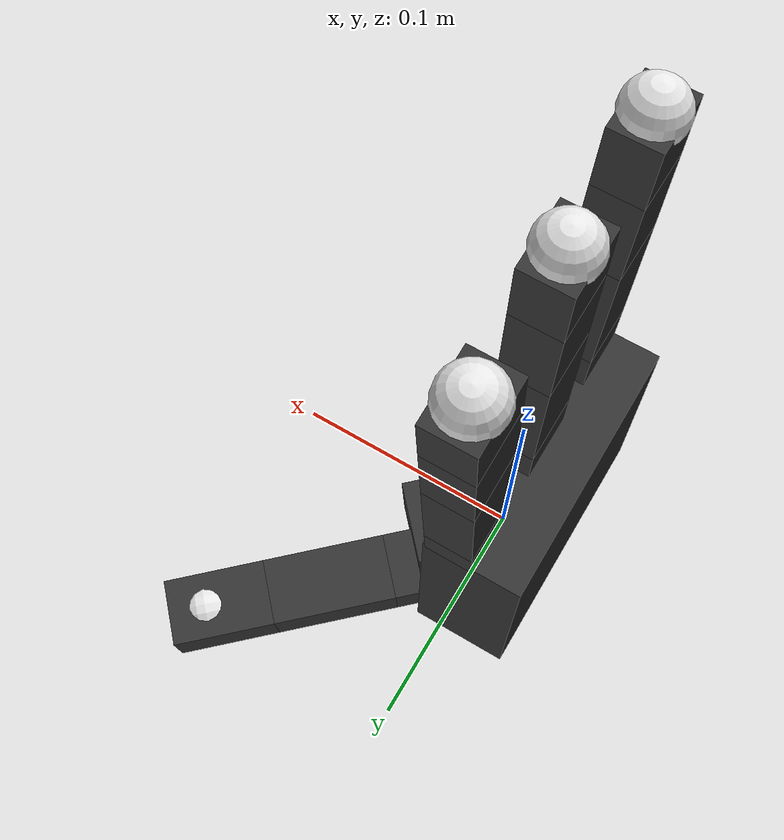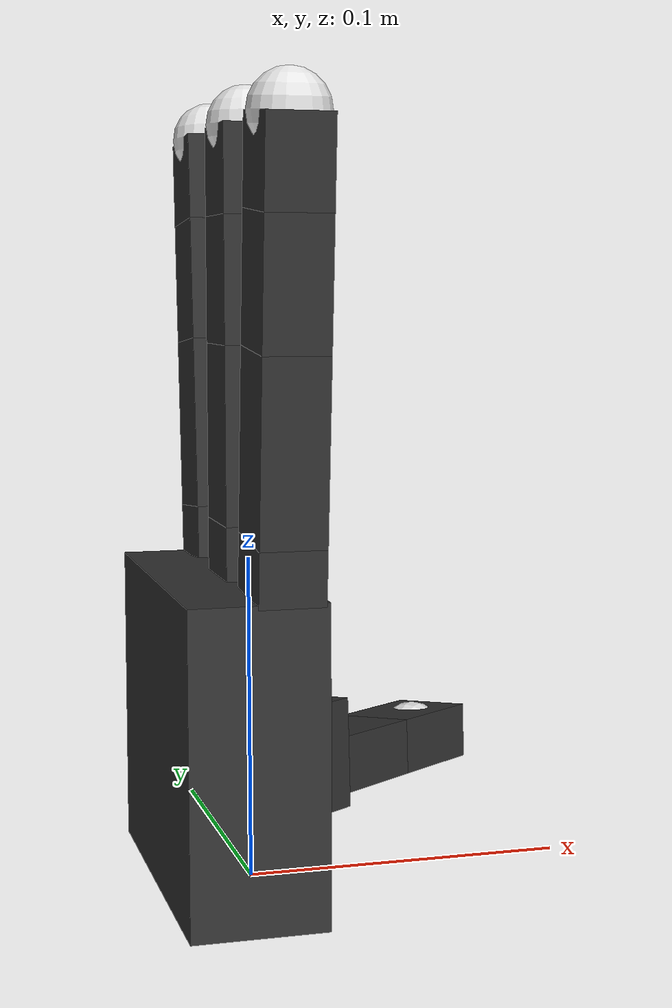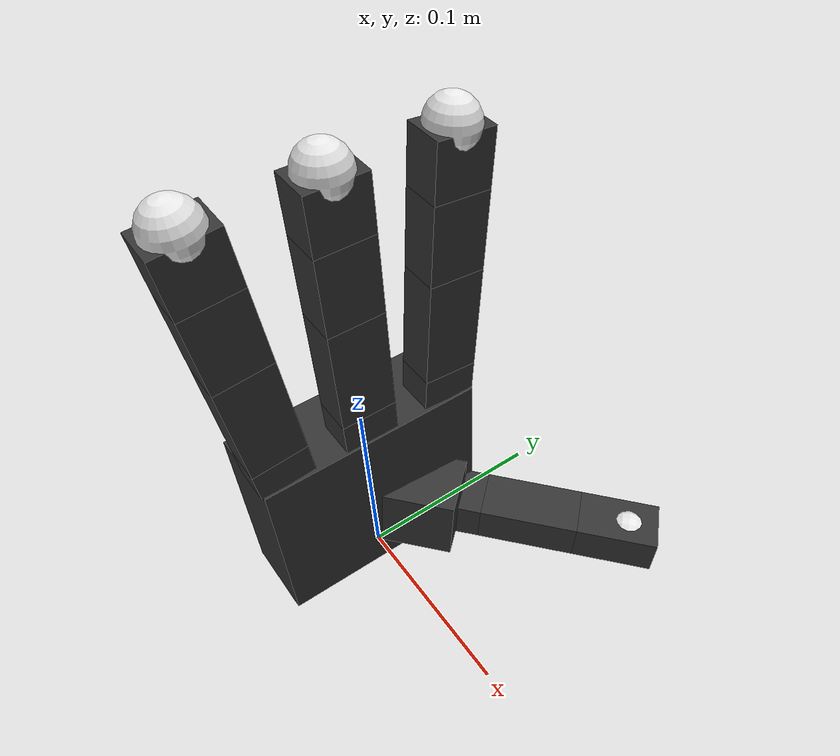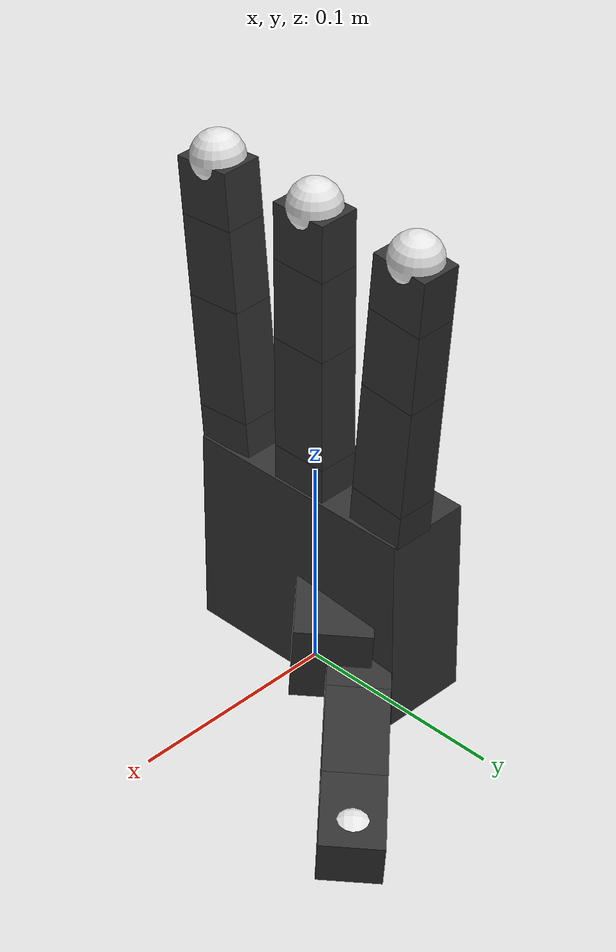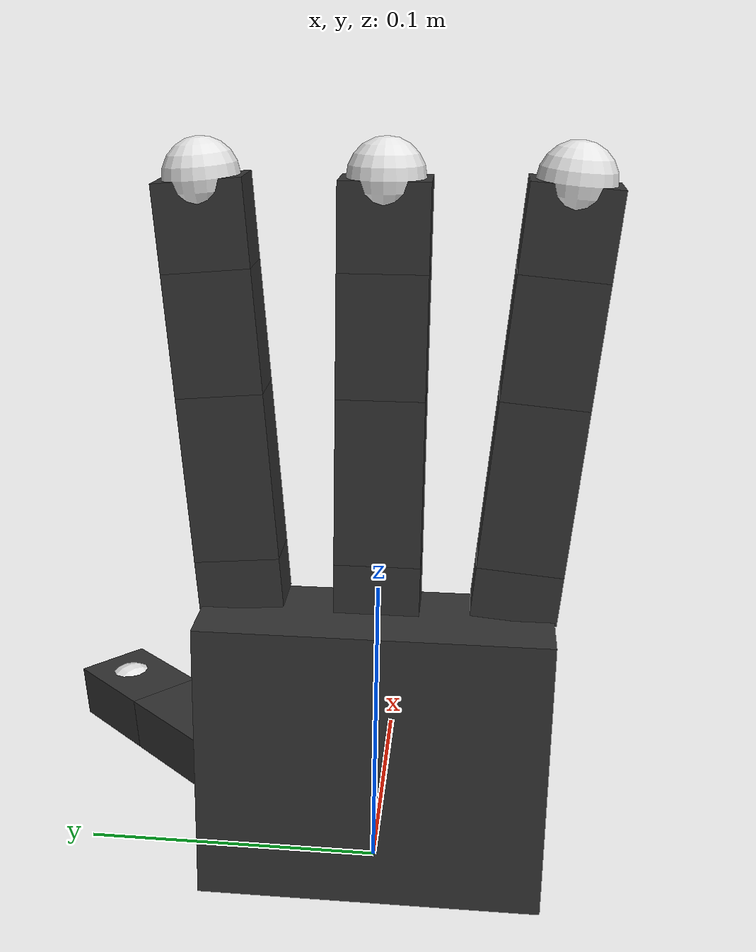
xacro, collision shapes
<?xml version="1.0"?>
<robot xmlns:xacro="http://www.ros.org/wiki/xacro" name="allegro_hand">
    <xacro:arg name="ros2_control_hardware_type" default="physical_device" />
    <xacro:arg name="hand" default="right" />
    <xacro:arg name="hand_id" default="1" />

    <xacro:arg name="initial_positions_file" default="$(find allegro_hand_v4_description)/config/initial_positions.yaml" />
    <xacro:arg name="pd_gains_file" default="$(find allegro_hand_v4_description)/config/pd_gains.yaml" />
    <xacro:arg name="ah_prefix" default="ah_" />

    <xacro:property name="hand_arg" value="$(arg hand)"/>

    <xacro:if value="${hand_arg == 'right'}">
        <xacro:include filename="$(find allegro_hand_v4_description)/urdf/allegro_hand_description_right.xacro" />
        <xacro:allegro_hand_right prefix="$(arg ah_prefix)"/>
    </xacro:if>

    <xacro:if value="${hand_arg == 'left'}">
        <xacro:include filename="$(find allegro_hand_v4_description)/urdf/allegro_hand_description_left.xacro" />
        <xacro:allegro_hand_left prefix="$(arg ah_prefix)"/>
    </xacro:if>

    <xacro:include filename="$(find allegro_hand_bringup)/config/v4/single_hand/allegro_hand.ros2_control.xacro" />
    <xacro:allegro_hand_ros2_control name="AllegroHandV4" initial_positions_file="$(arg initial_positions_file)" pd_gains_file="$(arg pd_gains_file)" io_interface_descriptor="can:can0" hand_id="$(arg hand_id)" prefix="$(arg ah_prefix)" ros2_control_hardware_type="$(arg ros2_control_hardware_type)"/>

    <xacro:if value="${'$(arg ros2_control_hardware_type)' == 'gazebo'}">
        <!-- Fix base_link to the world for Gazebo -->
        <link name="world"/>
        <joint name="world_fixed" type="fixed">
            <parent link="world"/>
            <child link="$(arg ah_prefix)base_link"/> <origin xyz="0 0 0" rpy="0 0 0"/>
        </joint>

        <!-- Add Gazebo ROS 2 control plugin -->
        <gazebo>
            <plugin
                filename="gz_ros2_control-system"
                name="gz_ros2_control::GazeboSimROS2ControlPlugin">
                <parameters>$(find allegro_hand_bringup)/config/v4/single_hand/ros2_controllers.yaml</parameters>
            </plugin>
        </gazebo>
    </xacro:if>

</robot>

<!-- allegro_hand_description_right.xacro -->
<robot xmlns:xacro="http://www.ros.org/wiki/xacro" name="allegro_hand_right">
  <xacro:macro name="allegro_hand_right" params="prefix:=''">
    <!-- Root base_link (virtual link for reference frame) -->
    <link name="${prefix}base_link" />
    <!-- Fixed joint connecting base_link to palm_link -->
    <joint name="${prefix}base_to_palm_joint" type="fixed">
      <parent link="${prefix}base_link" />
      <child link="${prefix}palm_link" />
      <origin xyz="0 0 0.095" rpy="0 0 0" />
    </joint>

    <link name="${prefix}palm_link">
      <visual>
        <geometry>
          <mesh filename="package://allegro_hand_v4_description/meshes/palm_link.STL" />
        </geometry>
        <origin rpy="0 0 0" xyz="0 0 0" />
        <material name="${prefix}black">
          <color rgba="0.2 0.2 0.2 1" />
        </material>
      </visual>
      <collision>
        <origin rpy="0 0 0" xyz="-0.009300 0 -0.0475" />
        <geometry>
          <box size="0.0408 0.1130 0.095" />
        </geometry>
      </collision>
      <inertial>
        <origin rpy="0 0 0" xyz="0 0 0.0475" />
        <mass value="0.4154" />
        <inertia ixx="1e-4" ixy="0.0" ixz="0.0" iyy="1e-4" iyz="0.0" izz="1e-4" />
      </inertial>
    </link>

    <link name="${prefix}link_00">
      <visual>
        <geometry>
          <mesh filename="package://allegro_hand_v4_description/meshes/link_t.0.right.STL" />
        </geometry>
        <material name="${prefix}black">
          <color rgba=".2 .2 .2 1" />
        </material>
        <origin rpy="0.01745329251 0 0" xyz="0 0 0" />
      </visual>
      <collision>
        <geometry>
          <box size="0.0358 0.034 0.0455" />
        </geometry>
        <origin rpy="0 0 0" xyz="-0.0179 0.017 0.02275" />
      </collision>
      <inertial>
        <mass value="0.0176" />
        <origin rpy="0 0 0" xyz="0 0 0" />
        <inertia ixx="1e-4" ixy="0.0" ixz="0.0" iyy="1e-4" iyz="0.0" izz="1e-4" />
      </inertial>
    </link>
    <joint name="${prefix}joint00" type="revolute">
      <axis xyz="-1 0 0" />
      <limit effort="15" lower="0.263" upper="1.396" velocity="7" />
      <parent link="${prefix}palm_link" />
      <child link="${prefix}link_00" />
      <origin rpy="0 -1.6580627884499999 -1.5707963259" xyz="-0.0182 0.019333 -0.045987" />
      <dynamics damping="0.1" friction="0.01" />
    </joint>

    <link name="${prefix}link_01">
      <visual>
        <geometry>
          <mesh filename="package://allegro_hand_v4_description/meshes/link_t.1.STL" />
        </geometry>
        <material name="${prefix}black">
          <color rgba=".2 .2 .2 1" />
        </material>
      </visual>
      <collision>
        <geometry>
          <box size="0.0196 0.0275 0.0177" />
        </geometry>
        <origin rpy="0 0 0" xyz="0 0 0.00885" />
      </collision>
      <inertial>
        <mass value="0.0119" />
        <origin rpy="0 0 0" xyz="0 0 0" />
        <inertia ixx="1e-4" ixy="0.0" ixz="0.0" iyy="1e-4" iyz="0.0" izz="1e-4" />
      </inertial>
    </link>
    <joint name="${prefix}joint01" type="revolute">
      <axis xyz="0 0 1" />
      <limit effort="15" lower="-0.10499999999999998" upper="1.1629999999999998" velocity="7" />
      <parent link="${prefix}link_00" />
      <child link="${prefix}link_01" />
      <origin xyz="-0.027 0.005 0.0399" />
      <dynamics damping="0.1" friction="0.01" />
    </joint>

    <link name="${prefix}link_02">
      <visual>
        <geometry>
          <mesh filename="package://allegro_hand_v4_description/meshes/link_t.2.STL" />
        </geometry>
        <material name="${prefix}black" />
      </visual>
      <collision>
        <geometry>
          <box size="0.0196 0.0275 0.0514" />
        </geometry>
        <origin rpy="0 0 0" xyz="0 0 0.0257" />
      </collision>
      <inertial>
        <mass value="0.038" />
        <origin rpy="0 0 0" xyz="0 0 0" />
        <inertia ixx="1e-4" ixy="0.0" ixz="0.0" iyy="1e-4" iyz="0.0" izz="1e-4" />
      </inertial>
    </link>
    <joint name="${prefix}joint02" type="revolute">
      <axis xyz="0 1 0" />
      <limit effort="15" lower="-0.18899999999999997" upper="1.644" velocity="7" />
      <parent link="${prefix}link_01" />
      <child link="${prefix}link_02" />
      <origin xyz="0 0 0.0177" />
      <dynamics damping="0.1" friction="0.01" />
    </joint>

    <link name="${prefix}link_03">
      <visual>
        <geometry>
          <mesh filename="package://allegro_hand_v4_description/meshes/link_t.3.STL" />
        </geometry>
        <material name="${prefix}black"/>
      </visual>
      <collision>
        <geometry>
          <box size="0.0196 0.0275 0.042300000000000004" />
        </geometry>
        <origin rpy="0 0 0" xyz="0 0 0.021150000000000002" />
      </collision>
      <inertial>
        <mass value="0.0388" />
        <origin rpy="0 0 0" xyz="0 0 0" />
        <inertia ixx="1e-4" ixy="0.0" ixz="0.0" iyy="1e-4" iyz="0.0" izz="1e-4" />
      </inertial>
    </link>
    <joint name="${prefix}joint03" type="revolute">
      <axis xyz="0 1 0" />
      <limit effort="15" lower="-0.162" upper="1.7189999999999999" velocity="7" />
      <parent link="${prefix}link_02" />
      <child link="${prefix}link_03" />
      <origin xyz="0 0 0.0514" />
      <dynamics damping="0.1" friction="0.01" />
    </joint>

    <link name="${prefix}link_04">
      <visual>
        <geometry>
          <mesh filename="package://allegro_hand_v4_description/meshes/link_t.4.STL" />
        </geometry>
        <material name="${prefix}white">
          <color rgba=".9 .9 .9 1" />
        </material>
      </visual>
      <collision>
        <geometry>
          <sphere radius="0.012" />
        </geometry>
        <origin rpy="0 0 0" xyz="0 0 0" />
      </collision>
      <inertial>
        <mass value="0.0168" />
        <origin rpy="0 0 0" xyz="0 0 0" />
        <inertia ixx="9.68e-07" ixy="0" ixz="0" iyy="9.68e-07" iyz="0" izz="9.68e-07" />
      </inertial>
    </link>
    <joint name="${prefix}joint.04" type="fixed">
      <parent link="${prefix}link_03" />
      <child link="${prefix}link_04" />
      <origin rpy="0 0 0" xyz="0 0 0.026699999999999998" />
    </joint>

    <link name="${prefix}link_10">
      <visual>
        <geometry>
          <mesh filename="package://allegro_hand_v4_description/meshes/link_f.0.STL" />
        </geometry>
        <material name="${prefix}black" />
      </visual>
      <collision>
        <geometry>
          <box size="0.0196 0.0275 0.0164" />
        </geometry>
        <origin rpy="0 0 0" xyz="0 0 0.0082" />
      </collision>
      <inertial>
        <mass value="0.0119" />
        <origin rpy="0 0 0" xyz="0 0 0" />
        <inertia ixx="1e-4" ixy="0.0" ixz="0.0" iyy="1e-4" iyz="0.0" izz="1e-4" />
      </inertial>
    </link>
    <joint name="${prefix}joint10" type="revolute">
      <axis xyz="0 0 1" />
      <limit effort="15" lower="-0.47" upper="0.47" velocity="7" />
      <parent link="${prefix}palm_link" />
      <child link="${prefix}link_10" />
      <origin rpy="-0.08726646254999999 0 0" xyz="0 0.0435 0" />
      <dynamics damping="0.1" friction="0.01" />
    </joint>

    <link name="${prefix}link_11">
      <visual>
        <geometry>
          <mesh filename="package://allegro_hand_v4_description/meshes/link_f.1.STL" />
        </geometry>
        <material name="${prefix}black" />
      </visual>
      <collision>
        <geometry>
          <box size="0.0196 0.0275 0.054" />
        </geometry>
        <origin rpy="0 0 0" xyz="0 0 0.027" />
      </collision>
      <inertial>
        <mass value="0.065" />
        <origin rpy="0 0 0" xyz="0 0 0" />
        <inertia ixx="1e-4" ixy="0.0" ixz="0.0" iyy="1e-4" iyz="0.0" izz="1e-4" />
      </inertial>
    </link>
    <joint name="${prefix}joint11" type="revolute">
      <limit effort="15" lower="-0.19599999999999998" upper="1.6099999999999999" velocity="7" />
      <axis xyz="0 1 0" />
      <parent link="${prefix}link_10" />
      <child link="${prefix}link_11" />
      <origin xyz="0 0 0.0164" />
      <dynamics damping="0.1" friction="0.01" />
    </joint>

    <link name="${prefix}link_12">
      <visual>
        <geometry>
          <mesh filename="package://allegro_hand_v4_description/meshes/link_f.2.STL" />
        </geometry>
        <material name="${prefix}black" />
      </visual>
      <collision>
        <geometry>
          <box size="0.0196 0.0275 0.0384" />
        </geometry>
        <origin rpy="0 0 0" xyz="0 0 0.0192" />
      </collision>
      <inertial>
        <mass value="0.0355" />
        <origin rpy="0 0 0" xyz="0 0 0" />
        <inertia ixx="1e-4" ixy="0.0" ixz="0.0" iyy="1e-4" iyz="0.0" izz="1e-4" />
      </inertial>
    </link>
    <joint name="${prefix}joint12" type="revolute">
      <axis xyz="0 1 0" />
      <limit effort="15" lower="-0.17400000000000002" upper="1.7089999999999999" velocity="7" />
      <parent link="${prefix}link_11" />
      <child link="${prefix}link_12" />
      <origin xyz="0 0 0.054" />
      <dynamics damping="0.1" friction="0.01" />
    </joint>

    <link name="${prefix}link_13">
      <visual>
        <geometry>
          <mesh filename="package://allegro_hand_v4_description/meshes/link_f.3.STL" />
        </geometry>
        <material name="${prefix}black" />
      </visual>
      <collision>
        <geometry>
          <box size="0.0196 0.0275 0.026699999999999998" />
        </geometry>
        <origin rpy="0 0 0" xyz="0 0 0.013349999999999999" />
      </collision>
      <inertial>
        <mass value="0.0096" />
        <origin rpy="0 0 0" xyz="0 0 0" />
        <inertia ixx="1e-4" ixy="0.0" ixz="0.0" iyy="1e-4" iyz="0.0" izz="1e-4" />
      </inertial>
    </link>
    <joint name="${prefix}joint13" type="revolute">
      <axis xyz="0 1 0" />
      <limit effort="15" lower="-0.227" upper="1.6179999999999999" velocity="7" />
      <parent link="${prefix}link_12" />
      <child link="${prefix}link_13" />
      <origin xyz="0 0 0.0384" />
      <dynamics damping="0.1" friction="0.01" />
    </joint>

    <link name="${prefix}link_14">
      <visual>
        <geometry>
          <mesh filename="package://allegro_hand_v4_description/meshes/link_f.4.STL" />
        </geometry>
        <material name="${prefix}white">
          <color rgba=".9 .9 .9 1" />
        </material>
      </visual>
      <collision>
        <geometry>
          <sphere radius="0.012" />
        </geometry>
        <origin rpy="0 0 0" xyz="0 0 0" />
      </collision>
      <inertial>
        <mass value="0.0168" />
        <origin rpy="0 0 0" xyz="0 0 0" />
        <inertia ixx="1e-4" ixy="0.0" ixz="0.0" iyy="1e-4" iyz="0.0" izz="1e-4" />
      </inertial>
    </link>
    <joint name="${prefix}joint.14" type="fixed">
      <parent link="${prefix}link_13" />
      <child link="${prefix}link_14" />
      <origin rpy="0 0 0" xyz="0 0 0.026699999999999998" />
    </joint>

    <link name="${prefix}link_20">
      <visual>
        <geometry>
          <mesh filename="package://allegro_hand_v4_description/meshes/link_f.0.STL" />
        </geometry>
        <material name="${prefix}black" />
      </visual>
      <collision>
        <geometry>
          <box size="0.0196 0.0275 0.0164" />
        </geometry>
        <origin rpy="0 0 0" xyz="0 0 0.0082" />
      </collision>
      <inertial>
        <mass value="0.0119" />
        <origin rpy="0 0 0" xyz="0 0 0" />
        <inertia ixx="1e-4" ixy="0.0" ixz="0.0" iyy="1e-4" iyz="0.0" izz="1e-4" />
      </inertial>
    </link>
    <joint name="${prefix}joint20" type="revolute">
      <axis xyz="0 0 1" />
      <limit effort="15" lower="-0.47" upper="0.47" velocity="7" />
      <parent link="${prefix}palm_link" />
      <child link="${prefix}link_20" />
      <origin rpy="0.0 0 0" xyz="0 0 0" />
      <dynamics damping="0.1" friction="0.01" />
    </joint>

    <link name="${prefix}link_21">
      <visual>
        <geometry>
          <mesh filename="package://allegro_hand_v4_description/meshes/link_f.1.STL" />
        </geometry>
        <material name="${prefix}black" />
      </visual>
      <collision>
        <geometry>
          <box size="0.0196 0.0275 0.054" />
        </geometry>
        <origin rpy="0 0 0" xyz="0 0 0.027" />
      </collision>
      <inertial>
        <mass value="0.065" />
        <origin rpy="0 0 0" xyz="0 0 0" />
        <inertia ixx="1e-4" ixy="0.0" ixz="0.0" iyy="1e-4" iyz="0.0" izz="1e-4" />
      </inertial>
    </link>
    <joint name="${prefix}joint21" type="revolute">
      <limit effort="15" lower="-0.19599999999999998" upper="1.6099999999999999" velocity="7" />
      <axis xyz="0 1 0" />
      <parent link="${prefix}link_20" />
      <child link="${prefix}link_21" />
      <origin xyz="0 0 0.0164" />
      <dynamics damping="0.1" friction="0.01" />
    </joint>

    <link name="${prefix}link_22">
      <visual>
        <geometry>
          <mesh filename="package://allegro_hand_v4_description/meshes/link_f.2.STL" />
        </geometry>
        <material name="${prefix}black" />
      </visual>
      <collision>
        <geometry>
          <box size="0.0196 0.0275 0.0384" />
        </geometry>
        <origin rpy="0 0 0" xyz="0 0 0.0192" />
      </collision>
      <inertial>
        <mass value="0.0355" />
        <origin rpy="0 0 0" xyz="0 0 0" />
        <inertia ixx="1e-4" ixy="0.0" ixz="0.0" iyy="1e-4" iyz="0.0" izz="1e-4" />
      </inertial>
    </link>
    <joint name="${prefix}joint22" type="revolute">
      <axis xyz="0 1 0" />
      <limit effort="15" lower="-0.17400000000000002" upper="1.7089999999999999" velocity="7" />
      <parent link="${prefix}link_21" />
      <child link="${prefix}link_22" />
      <origin xyz="0 0 0.054" />
      <dynamics damping="0.1" friction="0.01" />
    </joint>

    <link name="${prefix}link_23">
      <visual>
        <geometry>
          <mesh filename="package://allegro_hand_v4_description/meshes/link_f.3.STL" />
        </geometry>
        <material name="${prefix}black" />
      </visual>
      <collision>
        <geometry>
          <box size="0.0196 0.0275 0.026699999999999998" />
        </geometry>
        <origin rpy="0 0 0" xyz="0 0 0.013349999999999999" />
      </collision>
      <inertial>
        <mass value="0.0096" />
        <origin rpy="0 0 0" xyz="0 0 0" />
        <inertia ixx="1e-4" ixy="0.0" ixz="0.0" iyy="1e-4" iyz="0.0" izz="1e-4" />
      </inertial>
    </link>
    <joint name="${prefix}joint23" type="revolute">
      <axis xyz="0 1 0" />
      <limit effort="15" lower="-0.227" upper="1.6179999999999999" velocity="7" />
      <parent link="${prefix}link_22" />
      <child link="${prefix}link_23" />
      <origin xyz="0 0 0.0384" />
      <dynamics damping="0.1" friction="0.01" />
    </joint>

    <link name="${prefix}link_24">
      <visual>
        <geometry>
          <mesh filename="package://allegro_hand_v4_description/meshes/link_f.4.STL" />
        </geometry>
        <material name="${prefix}white">
          <color rgba=".9 .9 .9 1" />
        </material>
      </visual>
      <collision>
        <geometry>
          <sphere radius="0.012" />
        </geometry>
        <origin rpy="0 0 0" xyz="0 0 0" />
      </collision>
      <inertial>
        <mass value="0.0168" />
        <origin rpy="0 0 0" xyz="0 0 0" />
        <inertia ixx="9.68e-07" ixy="0" ixz="0" iyy="9.68e-07" iyz="0" izz="9.68e-07" />
      </inertial>
    </link>
    <joint name="${prefix}joint.24" type="fixed">
      <parent link="${prefix}link_23" />
      <child link="${prefix}link_24" />
      <origin rpy="0 0 0" xyz="0 0 0.026699999999999998" />
    </joint>

    <link name="${prefix}link_30">
      <visual>
        <geometry>
          <mesh filename="package://allegro_hand_v4_description/meshes/link_f.0.STL" />
        </geometry>
        <material name="${prefix}black" />
      </visual>
      <collision>
        <geometry>
          <box size="0.0196 0.0275 0.0164" />
        </geometry>
        <origin rpy="0 0 0" xyz="0 0 0.0082" />
      </collision>
      <inertial>
        <mass value="0.0119" />
        <origin rpy="0 0 0" xyz="0 0 0" />
        <inertia ixx="1e-4" ixy="0.0" ixz="0.0" iyy="1e-4" iyz="0.0" izz="1e-4" />
      </inertial>
    </link>
    <joint name="${prefix}joint30" type="revolute">
      <axis xyz="0 0 1" />
      <limit effort="15" lower="-0.47" upper="0.47" velocity="7" />
      <parent link="${prefix}palm_link" />
      <child link="${prefix}link_30" />
      <origin rpy="0.08726646254999999 0 0" xyz="0 -0.0435 0" />
      <dynamics damping="0.1" friction="0.01" />
    </joint>

    <link name="${prefix}link_31">
      <visual>
        <geometry>
          <mesh filename="package://allegro_hand_v4_description/meshes/link_f.1.STL" />
        </geometry>
        <material name="${prefix}black" />
      </visual>
      <collision>
        <geometry>
          <box size="0.0196 0.0275 0.054" />
        </geometry>
        <origin rpy="0 0 0" xyz="0 0 0.027" />
      </collision>
      <inertial>
        <mass value="0.065" />
        <origin rpy="0 0 0" xyz="0 0 0" />
        <inertia ixx="1e-4" ixy="0.0" ixz="0.0" iyy="1e-4" iyz="0.0" izz="1e-4" />
      </inertial>
    </link>
    <joint name="${prefix}joint31" type="revolute">
      <limit effort="15" lower="-0.19599999999999998" upper="1.6099999999999999" velocity="7" />
      <axis xyz="0 1 0" />
      <parent link="${prefix}link_30" />
      <child link="${prefix}link_31" />
      <origin xyz="0 0 0.0164" />
      <dynamics damping="0.1" friction="0.01" />
    </joint>

    <link name="${prefix}link_32">
      <visual>
        <geometry>
          <mesh filename="package://allegro_hand_v4_description/meshes/link_f.2.STL" />
        </geometry>
        <material name="${prefix}black" />
      </visual>
      <collision>
        <geometry>
          <box size="0.0196 0.0275 0.0384" />
        </geometry>
        <origin rpy="0 0 0" xyz="0 0 0.0192" />
      </collision>
      <inertial>
        <mass value="0.0355" />
        <origin rpy="0 0 0" xyz="0 0 0" />
        <inertia ixx="1e-4" ixy="0.0" ixz="0.0" iyy="1e-4" iyz="0.0" izz="1e-4" />
      </inertial>
    </link>
    <joint name="${prefix}joint32" type="revolute">
      <axis xyz="0 1 0" />
      <limit effort="15" lower="-0.17400000000000002" upper="1.7089999999999999" velocity="7" />
      <parent link="${prefix}link_31" />
      <child link="${prefix}link_32" />
      <origin xyz="0 0 0.054" />
      <dynamics damping="0.1" friction="0.01" />
    </joint>

    <link name="${prefix}link_33">
      <visual>
        <geometry>
          <mesh filename="package://allegro_hand_v4_description/meshes/link_f.3.STL" />
        </geometry>
        <material name="${prefix}black" />
      </visual>
      <collision>
        <geometry>
          <box size="0.0196 0.0275 0.026699999999999998" />
        </geometry>
        <origin rpy="0 0 0" xyz="0 0 0.013349999999999999" />
      </collision>
      <inertial>
        <mass value="0.0096" />
        <origin rpy="0 0 0" xyz="0 0 0" />
        <inertia ixx="1e-4" ixy="0.0" ixz="0.0" iyy="1e-4" iyz="0.0" izz="1e-4" />
      </inertial>
    </link>
    <joint name="${prefix}joint33" type="revolute">
      <axis xyz="0 1 0" />
      <limit effort="15" lower="-0.227" upper="1.6179999999999999" velocity="7" />
      <parent link="${prefix}link_32" />
      <child link="${prefix}link_33" />
      <origin xyz="0 0 0.0384" />
      <dynamics damping="0.1" friction="0.01" />
    </joint>

    <link name="${prefix}link_34">
      <visual>
        <geometry>
          <mesh filename="package://allegro_hand_v4_description/meshes/link_f.4.STL" />
        </geometry>
        <material name="${prefix}white">
          <color rgba=".9 .9 .9 1" />
        </material>
      </visual>
      <collision>
        <geometry>
          <sphere radius="0.012" />
        </geometry>
        <origin rpy="0 0 0" xyz="0 0 0" />
      </collision>
      <inertial>
        <mass value="0.0168" />
        <origin rpy="0 0 0" xyz="0 0 0" />
        <inertia ixx="9.68e-07" ixy="0" ixz="0" iyy="9.68e-07" iyz="0" izz="9.68e-07" />
      </inertial>
    </link>
    <joint name="${prefix}joint.34" type="fixed">
      <parent link="${prefix}link_33" />
      <child link="${prefix}link_34" />
      <origin rpy="0 0 0" xyz="0 0 0.026699999999999998" />
    </joint>

    <gazebo reference="${prefix}palm_link">
      <self_collide>false</self_collide>
    </gazebo>

    <gazebo reference="${prefix}link_00">
      <self_collide>false</self_collide>
    </gazebo>
    <gazebo reference="${prefix}link_01">
      <self_collide>false</self_collide>
    </gazebo>
    <gazebo reference="${prefix}link_02">
      <self_collide>false</self_collide>
    </gazebo>
    <gazebo reference="${prefix}link_03">
      <self_collide>false</self_collide>
    </gazebo>

    <gazebo reference="${prefix}link_10">
      <self_collide>false</self_collide>
    </gazebo>
    <gazebo reference="${prefix}link_11">
      <self_collide>false</self_collide>
    </gazebo>
    <gazebo reference="${prefix}link_12">
      <self_collide>false</self_collide>
    </gazebo>
    <gazebo reference="${prefix}link_13">
      <self_collide>false</self_collide>
    </gazebo>

    <gazebo reference="${prefix}link_20">
      <self_collide>false</self_collide>
    </gazebo>
    <gazebo reference="${prefix}link_21">
      <self_collide>false</self_collide>
    </gazebo>
    <gazebo reference="${prefix}link_22">
      <self_collide>false</self_collide>
    </gazebo>
    <gazebo reference="${prefix}link_23">
      <self_collide>false</self_collide>
    </gazebo>

    <gazebo reference="${prefix}link_30">
      <self_collide>false</self_collide>
    </gazebo>
    <gazebo reference="${prefix}link_31">
      <self_collide>false</self_collide>
    </gazebo>
    <gazebo reference="${prefix}link_32">
      <self_collide>false</self_collide>
    </gazebo>
    <gazebo reference="${prefix}link_33">
      <self_collide>false</self_collide>
    </gazebo>

    <gazebo reference="${prefix}link_04">
      <self_collide>false</self_collide>
    </gazebo>
    <gazebo reference="${prefix}link_14">
      <self_collide>false</self_collide>
    </gazebo>
    <gazebo reference="${prefix}link_24">
      <self_collide>false</self_collide>
    </gazebo>
    <gazebo reference="${prefix}link_34">
      <self_collide>false</self_collide>
    </gazebo>

  </xacro:macro>
</robot>
